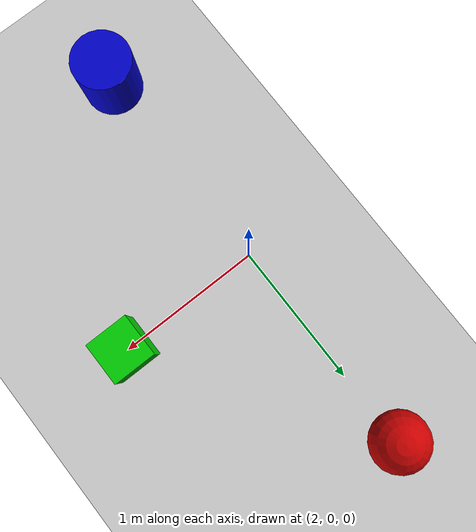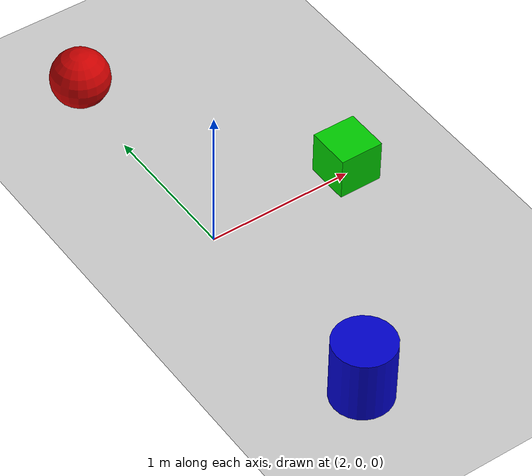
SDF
<?xml version="1.0" ?>
<sdf version="1.8">
  <world name="shapes_world">

    <physics name="1ms" type="ignored">
      <max_step_size>0.001</max_step_size>
      <real_time_factor>1.0</real_time_factor>
    </physics>

    <plugin filename="libignition-gazebo-physics-system.so"
            name="ignition::gazebo::systems::Physics"/>
    <plugin filename="libignition-gazebo-user-commands-system.so"
            name="ignition::gazebo::systems::UserCommands"/>
    <plugin filename="libignition-gazebo-scene-broadcaster-system.so"
            name="ignition::gazebo::systems::SceneBroadcaster"/>
    <plugin filename="libignition-gazebo-sensors-system.so"
            name="ignition::gazebo::systems::Sensors">
      <render_engine>ogre2</render_engine>
    </plugin>

    <!-- Light -->
    <light type="directional" name="sun">
      <cast_shadows>true</cast_shadows>
      <pose>0 0 10 0 0 0</pose>
      <diffuse>0.8 0.8 0.8 1</diffuse>
      <specular>0.2 0.2 0.2 1</specular>
      <direction>-0.5 0.1 -0.9</direction>
    </light>

    <!-- Ground Plane -->
    <model name="ground_plane">
      <static>true</static>
      <link name="link">
        <collision name="collision">
          <geometry><plane><normal>0 0 1</normal></plane></geometry>
        </collision>
        <visual name="visual">
          <geometry><plane><normal>0 0 1</normal><size>100 100</size></plane></geometry>
          <material><ambient>0.8 0.8 0.8 1</ambient></material>
        </visual>
      </link>
    </model>

    <!-- TARGET BOX (green) -->
    <model name="target_box">
      <static>true</static>
      <pose>3.0 0.0 0.15 0 0 0</pose>
      <link name="link">
        <collision name="collision">
          <geometry><box><size>0.3 0.3 0.3</size></box></geometry>
        </collision>
        <visual name="visual">
          <geometry><box><size>0.3 0.3 0.3</size></box></geometry>
          <material><ambient>0 0.8 0 1</ambient><diffuse>0 0.8 0 1</diffuse></material>
        </visual>
      </link>
    </model>

    <!-- DECOY 1 (red sphere) -->
    <model name="decoy_sphere">
      <static>true</static>
      <pose>2.0 1.5 0.2 0 0 0</pose>
      <link name="link">
        <collision name="collision">
          <geometry><sphere><radius>0.2</radius></sphere></geometry>
        </collision>
        <visual name="visual">
          <geometry><sphere><radius>0.2</radius></sphere></geometry>
          <material><ambient>0.8 0 0 1</ambient><diffuse>0.8 0 0 1</diffuse></material>
        </visual>
      </link>
    </model>

    <!-- DECOY 2 (blue cylinder) -->
    <model name="decoy_cylinder">
      <static>true</static>
      <pose>2.0 -1.5 0.2 0 0 0</pose>
      <link name="link">
        <collision name="collision">
          <geometry><cylinder><radius>0.2</radius><length>0.5</length></cylinder></geometry>
        </collision>
        <visual name="visual">
          <geometry><cylinder><radius>0.2</radius><length>0.5</length></cylinder></geometry>
          <material><ambient>0 0 0.8 1</ambient><diffuse>0 0 0.8 1</diffuse></material>
        </visual>
      </link>
    </model>

  </world>
</sdf>
